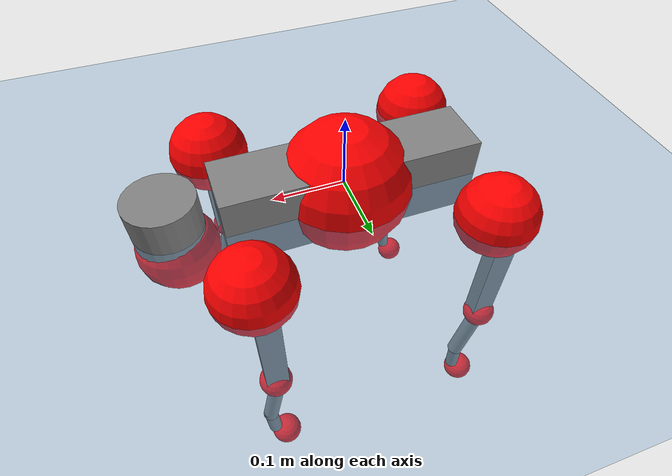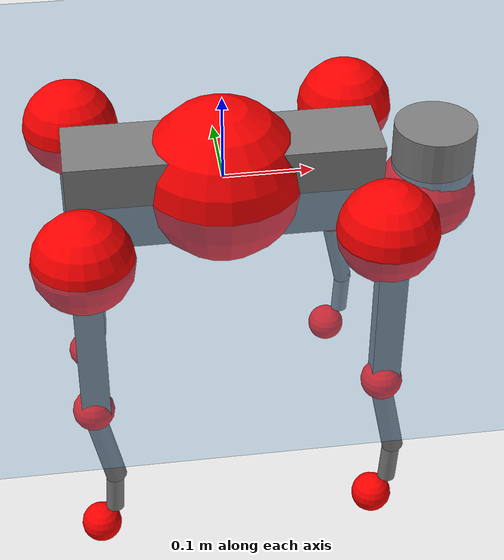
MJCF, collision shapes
<mujoco model="go2">
  <compiler angle="radian" assetdir="assets" balanceinertia="true" inertiafromgeom="false"/>

  <option timestep="0.005" density="1.2" viscosity="2e-05"/>

  <size nkey="1"/>

  <visual>
    <quality shadowsize="8192"/>
    <map shadowclip="0.5"/>
  </visual>

  <default>
    <default class="/">
      <geom contype="0" conaffinity="0" group="1" solref="-1000 -80"/>
      <site size="0.01 0.005 0.005" group="5"/>
      <general forcelimited="true" biastype="affine" gainprm="20" biasprm="0 -20 -0.5"/>
      <default class="go2">
        <joint armature="0.01" damping="0.01" frictionloss="0.2"/>
        <geom condim="1" margin="0.001"/>
        <default class="visual">
          <geom type="mesh" group="2"/>
        </default>
        <default class="collision">
          <geom group="3"/>
          <default class="foot">
            <geom size="0.022 0 0" condim="6" priority="1" friction="0.8 0.02 0.01" solimp="0.015 1 0.022"/>
          </default>
        </default>
        <default class="reward_collision_sphere">
          <geom group="5" rgba="1 0 0 1"/>
        </default>
      </default>
    </default>
  </default>

  <asset>
    <texture type="skybox" colorspace="auto" name="//unnamed_texture_0" builtin="gradient" rgb1="0.95 0.95 0.95" rgb2="0.95 0.95 0.95" width="100" height="600"/>
    <texture type="2d" colorspace="auto" name="texplane" builtin="checker" rgb1="0.345 0.575 0.748" rgb2="0.345 0.575 0.748" markrgb="1 1 1" width="512" height="512"/>
    <material name="MatPlane" class="/" texture="texplane" texuniform="true" texrepeat="2 2" specular="0.9"/>
    <material name="metal" class="/" rgba="0.9 0.95 0.95 1"/>
    <material name="black" class="/" rgba="0 0 0 1"/>
    <material name="white" class="/"/>
    <material name="gray" class="/" rgba="0.671705 0.692426 0.77427 1"/>
    <mesh name="base_0" class="/" file="base_0.obj"/>
    <mesh name="base_1" class="/" file="base_1.obj"/>
    <mesh name="base_2" class="/" file="base_2.obj"/>
    <mesh name="base_3" class="/" file="base_3.obj"/>
    <mesh name="base_4" class="/" file="base_4.obj"/>
    <mesh name="hip_0" class="/" file="hip_0.obj"/>
    <mesh name="hip_1" class="/" file="hip_1.obj"/>
    <mesh name="thigh_0" class="/" file="thigh_0.obj"/>
    <mesh name="thigh_1" class="/" file="thigh_1.obj"/>
    <mesh name="thigh_mirror_0" class="/" file="thigh_mirror_0.obj"/>
    <mesh name="thigh_mirror_1" class="/" file="thigh_mirror_1.obj"/>
    <mesh name="calf_0" class="/" file="calf_0.obj"/>
    <mesh name="calf_1" class="/" file="calf_1.obj"/>
    <mesh name="calf_mirror_0" class="/" file="calf_mirror_0.obj"/>
    <mesh name="calf_mirror_1" class="/" file="calf_mirror_1.obj"/>
    <mesh name="foot" class="/" file="foot.obj"/>
  </asset>

  <worldbody>
    <geom name="floor" class="/" size="100 100 0.125" type="plane" group="0" material="MatPlane"/>
    <light name="toplight_shadow" class="/" pos="0 0 5" dir="0.0990148 0.0990148 -0.990148" type="directional" ambient="0.04 0.04 0.04" diffuse="0.55 0.55 0.55" specular="0.12 0.12 0.12"/>
    <light name="toplight_fill" class="/" pos="0 0 5" dir="0.0990148 0.0990148 -0.990148" type="directional" castshadow="false" ambient="0.04 0.04 0.04" diffuse="0.3 0.3 0.3" specular="0.08 0.08 0.08"/>
    <body name="trunk" childclass="go2" pos="-0.00104925 0.000452405 -0.00188891" quat="0.999999 0.000454234 0.000836269 0.000632578">
      <inertial pos="0.0159785 0.00252728 -0.00473642" quat="0.00759854 0.718554 0.00320535 0.695423" mass="5.27622" diaginertia="0.0437554 0.144316 0.0110306"/>
      <joint name="//unnamed_joint_0" type="free" armature="0" damping="0" frictionloss="0"/>
      <geom name="//unnamed_geom_1" class="visual" material="black" mesh="base_0"/>
      <geom name="//unnamed_geom_2" class="visual" material="black" mesh="base_1"/>
      <geom name="//unnamed_geom_3" class="visual" material="black" mesh="base_2"/>
      <geom name="//unnamed_geom_4" class="visual" material="white" mesh="base_3"/>
      <geom name="//unnamed_geom_5" class="visual" material="gray" mesh="base_4"/>
      <geom name="trunk_1" class="collision" size="0.172775 0.0429413 0.0523562" type="box"/>
      <geom name="trunk_2" class="collision" size="0.0459265 0.0413338" pos="0.236747 0 0.00850206" type="cylinder"/>
      <geom name="trunk_3" class="collision" size="0.0431709" pos="0.243392 0 -0.0510123"/>
      <geom name="//unnamed_geom_9" class="reward_collision_sphere" size="0.091853"/>
      <geom name="//unnamed_geom_10" class="reward_collision_sphere" size="0.0551118" pos="0.232593 0 -0.0382593"/>
      <site name="imu" pos="-0.0243263 0.0127655 0.0219346" size="0.0091853"/>
      <camera name="track" pos="0 -2.14939 0" quat="0.707107 0.707107 0 0" mode="trackcom"/>
      <camera name="ego_camera" pos="0.259175 0 0.0382593" quat="-0.5 -0.5 0.5 0.5"/>
      <body name="FL_hip" pos="0.160229 0.0528869 0.00146694" quat="1 0.000217689 -0.000301855 0.000154508">
        <inertial pos="-0.00696706 0.0024445 -0.00138945" quat="0.492049 0.506773 0.506841 0.494147" mass="0.510675" diaginertia="0.00035071 0.00082339 0.000206192"/>
        <joint name="FL_hip_joint" pos="0 0 0" axis="0.999991 -0.00427728 -0.000438377" range="-1.05479 1.09687" armature="0.00917903" damping="0" frictionloss="0.205179"/>
        <geom name="//unnamed_geom_11" class="visual" material="metal" mesh="hip_0"/>
        <geom name="//unnamed_geom_12" class="visual" material="gray" mesh="hip_1"/>
        <geom name="//unnamed_geom_13" class="collision" size="0.0422524 0.0183706" pos="0 0.0859754 0" quat="0.707107 0.707107 0 0" type="cylinder"/>
        <geom name="//unnamed_geom_14" class="reward_collision_sphere" size="0.0551118" pos="0 0.0752285 0"/>
        <body name="FL_thigh" pos="-0.00345377 0.104613 0.00136476" quat="1 -2.60657e-05 -0.000409459 4.49472e-05">
          <inertial pos="-0.00191683 -0.0236884 -0.0272954" quat="0.828627 0.0867413 -0.0227893 0.55257" mass="0.86145" diaginertia="0.00226304 0.00810834 0.000364585"/>
          <joint name="FL_thigh_joint" pos="0 0 0" axis="-0.00361897 0.999983 0.0046011" stiffness="0.00727662" range="-1.61653 3.48728" armature="0.00802531" damping="0.0193042" frictionloss="0.182778"/>
          <geom name="//unnamed_geom_15" class="visual" material="metal" mesh="thigh_0"/>
          <geom name="//unnamed_geom_16" class="visual" material="gray" mesh="thigh_1"/>
          <geom name="//unnamed_geom_17" class="collision" size="0.0978234 0.011252 0.015615" pos="0 0 -0.0905469" quat="0.707107 0 0.707107 0" type="box"/>
          <body name="FL_calf" pos="0.00105445 -0.00147251 -0.182053" quat="1 -5.57979e-05 1.66687e-05 -6.14675e-05">
            <inertial pos="0.00391792 -0.00284371 -0.120455" quat="0.712074 0.0016974 -0.00568052 0.70208" mass="0.188778" diaginertia="0.000573362 0.00207606 2.35213e-05"/>
            <joint name="FL_calf_joint" pos="0 0 0" axis="0.0179839 0.999833 0.00338988" range="-2.75112 -0.783992" armature="0.00914065" damping="0" frictionloss="0.199514"/>
            <geom name="//unnamed_geom_18" class="visual" material="gray" mesh="calf_0"/>
            <geom name="//unnamed_geom_19" class="visual" material="black" mesh="calf_1"/>
            <geom name="FL_calf0" class="collision" size="0.0110224 0.0551118" pos="0.00664552 0 -0.0510123" quat="0.994493 0 -0.104807 0" type="cylinder"/>
            <geom name="//unnamed_geom_21" class="collision" size="0.0101038 0.0298522" pos="0.0166138 0 -0.12583" quat="0.999688 0 0.0249974 0" type="cylinder"/>
            <geom name="//unnamed_geom_22" class="visual" pos="0 0 -0.181094" quat="1 0 0 0" material="black" mesh="foot"/>
            <geom name="FL_foot" class="foot" size="0.0152166" pos="-0.00166138 0 -0.181094"/>
            <geom name="//unnamed_geom_24" class="reward_collision_sphere" size="0.0229632"/>
            <geom name="//unnamed_geom_25" class="reward_collision_sphere" size="0.0229632" pos="-0.00166138 0 -0.181094"/>
            <site name="FL_foot" class="foot" pos="-0.00166138 0 -0.181094" size="0.0091853"/>
          </body>
        </body>
      </body>
      <body name="FR_hip" pos="0.159934 -0.0486256 0.0028854" quat="1 -0.000500354 0.000440924 0.000607452">
        <inertial pos="-0.00529967 -0.00200219 -8.5355e-05" quat="0.494214 0.512894 0.496377 0.496289" mass="0.532824" diaginertia="0.0003436 0.000845018 0.000208851"/>
        <joint name="FR_hip_joint" pos="0 0 0" axis="0.999924 0.0012228 0.0123081" range="-1.08997 1.00164" armature="0.00921141" damping="0" frictionloss="0.208912"/>
        <geom name="//unnamed_geom_26" class="visual" pos="0 1.95564e-09 8.38815e-08" quat="4.63268e-05 1 0 0" material="metal" mesh="hip_0"/>
        <geom name="//unnamed_geom_27" class="visual" pos="0 3.17033e-09 -2.07471e-07" quat="4.63268e-05 1 0 0" material="gray" mesh="hip_1"/>
        <geom name="//unnamed_geom_28" class="collision" size="0.0422524 0.0183706" pos="0 -0.0859754 0" quat="0.707107 0.707107 0 0" type="cylinder"/>
        <geom name="//unnamed_geom_29" class="reward_collision_sphere" size="0.0551118" pos="0 -0.0752285 0"/>
        <body name="FR_thigh" pos="-0.000605847 -0.105361 -0.000802474" quat="1 -0.0005814 -0.000350404 0.000723399">
          <inertial pos="-0.00423889 0.024171 -0.028919" quat="0.552256 -0.0193407 0.0861002 0.828991" mass="0.927885" diaginertia="0.00235498 0.0081164 0.000400716"/>
          <joint name="FR_thigh_joint" pos="0 0 0" axis="0.00435903 -0.99999 0.000265876" stiffness="0.0123864" range="-3.49528 1.51869" armature="0.00828553" damping="0.00935403" frictionloss="0.158112"/>
          <geom name="//unnamed_geom_30" class="visual" material="metal" mesh="thigh_mirror_0"/>
          <geom name="//unnamed_geom_31" class="visual" material="gray" mesh="thigh_mirror_1"/>
          <geom name="//unnamed_geom_32" class="collision" size="0.0978234 0.011252 0.015615" pos="0 0 -0.0905469" quat="0.707107 0 0.707107 0" type="box"/>
          <body name="FR_calf" pos="-0.0028442 -0.00185702 -0.179157" quat="1 -1.33735e-05 0.000144 0.000149575">
            <inertial pos="0.0054165 -0.00162997 -0.117817" quat="0.704576 -0.0109693 0.00560583 0.709521" mass="0.183531" diaginertia="0.000577207 0.00210184 2.21372e-05"/>
            <joint name="FR_calf_joint" pos="0 0 0" axis="8.28135e-05 -1 -7.88726e-06" range="0.834109 2.73891" armature="0.00883499" damping="0" frictionloss="0.164134"/>
            <geom name="//unnamed_geom_33" class="visual" material="gray" mesh="calf_mirror_0"/>
            <geom name="//unnamed_geom_34" class="visual" material="black" mesh="calf_mirror_1"/>
            <geom name="FR_calf0" class="collision" size="0.0119409 0.0551118" pos="0.0083069 0 -0.0510123" quat="0.995004 0 -0.0998334 0" type="cylinder"/>
            <geom name="//unnamed_geom_36" class="collision" size="0.0101038 0.0298522" pos="0.0166138 0 -0.12583" quat="0.999688 0 0.0249974 0" type="cylinder"/>
            <geom name="//unnamed_geom_37" class="visual" pos="0 0 -0.181094" quat="1 0 0 0" material="black" mesh="foot"/>
            <geom name="FR_foot" class="foot" size="0.0204734" pos="-0.00166138 0 -0.181094"/>
            <geom name="//unnamed_geom_39" class="reward_collision_sphere" size="0.0229632"/>
            <geom name="//unnamed_geom_40" class="reward_collision_sphere" size="0.0229632" pos="-0.00166138 0 -0.181094"/>
            <site name="FR_foot" class="foot" pos="-0.00166138 0 -0.181094" size="0.0091853"/>
          </body>
        </body>
      </body>
      <body name="RL_hip" pos="-0.161014 0.0475442 0.000561274" quat="0.999999 -0.00074573 -0.000632965 -0.000248605">
        <inertial pos="0.00384776 -0.000158821 -0.0017898" quat="0.500617 0.496583 0.501693 0.501091" mass="0.515527" diaginertia="0.000329745 0.000842871 0.000199186"/>
        <joint name="RL_hip_joint" pos="0 0 0" axis="-0.999992 -0.00369174 -0.00167294" range="-1.10044 1.09275" armature="0.0103837" damping="0.0170884" frictionloss="0.183603"/>
        <geom name="//unnamed_geom_41" class="visual" pos="1.70014e-10 0 3.33266e-08" quat="4.63268e-05 0 1 0" material="metal" mesh="hip_0"/>
        <geom name="//unnamed_geom_42" class="visual" pos="2.75612e-10 0 2.95559e-08" quat="4.63268e-05 0 1 0" material="gray" mesh="hip_1"/>
        <geom name="//unnamed_geom_43" class="collision" size="0.0422524 0.0183706" pos="0 0.0859754 0" quat="0.707107 0.707107 0 0" type="cylinder"/>
        <geom name="//unnamed_geom_44" class="reward_collision_sphere" size="0.0551118" pos="0 0.0752285 0"/>
        <body name="RL_thigh" pos="-0.00155509 0.100336 -0.000947641" quat="0.999999 0.00023248 -0.000338382 -0.00138553">
          <inertial pos="-0.00153226 -0.0265704 -0.0295523" quat="0.829419 0.0852934 -0.0199951 0.551715" mass="0.912862" diaginertia="0.00245937 0.00840552 0.000410592"/>
          <joint name="RL_thigh_joint" pos="0 0 0" axis="-0.00736505 0.999934 -0.00879291" stiffness="0.0139504" range="-0.57743 4.53153" armature="0.00916994" damping="0.00894238" frictionloss="0.201354"/>
          <geom name="//unnamed_geom_45" class="visual" material="metal" mesh="thigh_0"/>
          <geom name="//unnamed_geom_46" class="visual" material="gray" mesh="thigh_1"/>
          <geom name="//unnamed_geom_47" class="collision" size="0.0978234 0.011252 0.015615" pos="0 0 -0.0905469" quat="0.707107 0 0.707107 0" type="box"/>
          <body name="RL_calf" pos="-0.0015428 0.00220328 -0.1841" quat="0.999999 -0.000487613 -0.000605098 0.00108374">
            <inertial pos="0.00320319 0.00229354 -0.12169" quat="0.707754 -0.00347713 0.00578069 0.706427" mass="0.179251" diaginertia="0.000566633 0.00196707 2.32617e-05"/>
            <joint name="RL_calf_joint" pos="0 0 0" axis="0.0095721 0.999952 -0.00211024" stiffness="0.00186714" range="-2.73973 -0.862952" armature="0.0103122" damping="0" frictionloss="0.18468"/>
            <geom name="//unnamed_geom_48" class="visual" material="gray" mesh="calf_0"/>
            <geom name="//unnamed_geom_49" class="visual" material="black" mesh="calf_1"/>
            <geom name="RL_calf0" class="collision" size="0.0119409 0.0551118" pos="0.0083069 0 -0.0510123" quat="0.995004 0 -0.0998334 0" type="cylinder"/>
            <geom name="//unnamed_geom_51" class="collision" size="0.0101038 0.0298522" pos="0.0166138 0 -0.12583" quat="0.999688 0 0.0249974 0" type="cylinder"/>
            <geom name="//unnamed_geom_52" class="visual" pos="0 0 -0.181094" quat="1 0 0 0" material="black" mesh="foot"/>
            <geom name="RL_foot" class="foot" size="0.020147" pos="-0.00166138 0 -0.181094"/>
            <geom name="//unnamed_geom_54" class="reward_collision_sphere" size="0.0229632"/>
            <geom name="//unnamed_geom_55" class="reward_collision_sphere" size="0.0229632" pos="-0.00166138 0 -0.181094"/>
            <site name="RL_foot" class="foot" pos="-0.00166138 0 -0.181094" size="0.0091853"/>
          </body>
        </body>
      </body>
      <body name="RR_hip" pos="-0.158803 -0.049949 -0.00469963" quat="1 -2.16475e-06 0.00045507 0.000117805">
        <inertial pos="0.0015708 -0.0045518 -0.000751205" quat="0.495773 0.493369 0.508485 0.502234" mass="0.529086" diaginertia="0.000367651 0.000876662 0.000224618"/>
        <joint name="RR_hip_joint" pos="0 0 0" axis="-0.999971 -0.00751618 0.00151124" range="-1.08493 1.04988" armature="0.00916726" damping="0.00519675" frictionloss="0.19741"/>
        <geom name="//unnamed_geom_56" class="visual" pos="-1.61566e-10 1.95564e-09 -5.05549e-08" quat="2.14617e-09 4.63268e-05 4.63268e-05 -1" material="metal" mesh="hip_0"/>
        <geom name="//unnamed_geom_57" class="visual" pos="-2.96507e-10 3.17033e-09 2.37027e-07" quat="2.14617e-09 4.63268e-05 4.63268e-05 -1" material="gray" mesh="hip_1"/>
        <geom name="//unnamed_geom_58" class="collision" size="0.0422524 0.0183706" pos="0 -0.0859754 0" quat="0.707107 0.707107 0 0" type="cylinder"/>
        <geom name="//unnamed_geom_59" class="reward_collision_sphere" size="0.0551118" pos="0 -0.0752285 0"/>
        <body name="RR_thigh" pos="0.000800793 -0.101234 -0.0022333" quat="1 -0.000287933 0.00015713 -0.000132353">
          <inertial pos="-0.000943302 0.0220776 -0.0284789" quat="0.544736 -0.0164956 0.0747958 0.835103" mass="0.86752" diaginertia="0.00241111 0.00825049 0.00038637"/>
          <joint name="RR_thigh_joint" pos="0 0 0" axis="0.00133832 -0.999832 0.0182678" range="-4.53374 0.467197" armature="0.00928015" damping="0" frictionloss="0.182154"/>
          <geom name="//unnamed_geom_60" class="visual" material="metal" mesh="thigh_mirror_0"/>
          <geom name="//unnamed_geom_61" class="visual" material="gray" mesh="thigh_mirror_1"/>
          <geom name="//unnamed_geom_62" class="collision" size="0.0978234 0.011252 0.015615" pos="0 0 -0.0905469" quat="0.707107 0 0.707107 0" type="box"/>
          <body name="RR_calf" pos="-0.00270054 0.00225847 -0.183136" quat="1 0.00034406 0.000467662 -0.000339276">
            <inertial pos="0.0056529 0.00103059 -0.120855" quat="0.695936 -0.00270223 0.00668172 0.718068" mass="0.19459" diaginertia="0.000615318 0.00222999 2.36927e-05"/>
            <joint name="RR_calf_joint" pos="0 0 0" axis="-0.00658733 -0.999949 -0.00766236" range="0.887035 2.72673" armature="0.00941726" damping="0.00402602" frictionloss="0.180763"/>
            <geom name="//unnamed_geom_63" class="visual" material="gray" mesh="calf_mirror_0"/>
            <geom name="//unnamed_geom_64" class="visual" material="black" mesh="calf_mirror_1"/>
            <geom name="RR_calf0" class="collision" size="0.0119409 0.0551118" pos="0.0083069 0 -0.0510123" quat="0.995004 0 -0.0998334 0" type="cylinder"/>
            <geom name="//unnamed_geom_66" class="collision" size="0.0101038 0.0298522" pos="0.0166138 0 -0.12583" quat="0.999688 0 0.0249974 0" type="cylinder"/>
            <geom name="//unnamed_geom_67" class="visual" pos="0 0 -0.181094" quat="1 0 0 0" material="black" mesh="foot"/>
            <geom name="RR_foot" class="foot" size="0.0224134" pos="-0.00166138 0 -0.181094"/>
            <geom name="//unnamed_geom_69" class="reward_collision_sphere" size="0.0229632"/>
            <geom name="//unnamed_geom_70" class="reward_collision_sphere" size="0.0229632" pos="-0.00166138 0 -0.181094"/>
            <site name="RR_foot" class="foot" pos="-0.00166138 0 -0.181094" size="0.0091853"/>
          </body>
        </body>
      </body>
    </body>
  </worldbody>

  <contact>
    <pair class="/" geom1="floor" geom2="FL_foot" name="//unnamed_contact_0"/>
    <pair class="/" geom1="floor" geom2="FR_foot" name="//unnamed_contact_1"/>
    <pair class="/" geom1="floor" geom2="RL_foot" name="//unnamed_contact_2"/>
    <pair class="/" geom1="floor" geom2="RR_foot" name="//unnamed_contact_3"/>
  </contact>

  <actuator>
    <general name="FL_hip" class="/" joint="FL_hip_joint" forcerange="-21.6906 21.6906" gainprm="18.2611" biasprm="0 -18.2611 -0.453388"/>
    <general name="FL_thigh" class="/" joint="FL_thigh_joint" forcerange="-21.3006 21.3006" gainprm="18.2611" biasprm="0 -18.2611 -0.453388"/>
    <general name="FL_calf" class="/" joint="FL_calf_joint" forcerange="-45.6124 45.6124" gainprm="18.2611" biasprm="0 -18.2611 -0.453388"/>
    <general name="FR_hip" class="/" joint="FR_hip_joint" forcerange="-22.4098 22.4098" gainprm="18.2611" biasprm="0 -18.2611 -0.453388"/>
    <general name="FR_thigh" class="/" joint="FR_thigh_joint" forcerange="-23.7086 23.7086" gainprm="18.2611" biasprm="0 -18.2611 -0.453388"/>
    <general name="FR_calf" class="/" joint="FR_calf_joint" forcerange="-40.3157 40.3157" gainprm="18.2611" biasprm="0 -18.2611 -0.453388"/>
    <general name="RL_hip" class="/" joint="RL_hip_joint" forcerange="-21.4959 21.4959" gainprm="18.2611" biasprm="0 -18.2611 -0.453388"/>
    <general name="RL_thigh" class="/" joint="RL_thigh_joint" forcerange="-20.1945 20.1945" gainprm="18.2611" biasprm="0 -18.2611 -0.453388"/>
    <general name="RL_calf" class="/" joint="RL_calf_joint" forcerange="-45.7287 45.7287" gainprm="18.2611" biasprm="0 -18.2611 -0.453388"/>
    <general name="RR_hip" class="/" joint="RR_hip_joint" forcerange="-21.8786 21.8786" gainprm="18.2611" biasprm="0 -18.2611 -0.453388"/>
    <general name="RR_thigh" class="/" joint="RR_thigh_joint" forcerange="-20.8607 20.8607" gainprm="18.2611" biasprm="0 -18.2611 -0.453388"/>
    <general name="RR_calf" class="/" joint="RR_calf_joint" forcerange="-45.9802 45.9802" gainprm="18.2611" biasprm="0 -18.2611 -0.453388"/>
  </actuator>

  <sensor>
    <gyro site="imu" name="imu_angular_velocity"/>
    <velocimeter site="imu" name="imu_linear_velocity"/>
    <framelinvel objtype="site" objname="FL_foot" name="FL_foot_global_linear_velocity"/>
    <framelinvel objtype="site" objname="FR_foot" name="FR_foot_global_linear_velocity"/>
    <framelinvel objtype="site" objname="RL_foot" name="RL_foot_global_linear_velocity"/>
    <framelinvel objtype="site" objname="RR_foot" name="RR_foot_global_linear_velocity"/>
  </sensor>

  <keyframe>
    <key name="home" qpos="0 0 0.325 1 0 0 0 0.1 0.8 -1.5 -0.1 -0.8 1.5 -0.1 0.8 -1.5 0.1 -0.8 1.5"/>
  </keyframe>
</mujoco>
